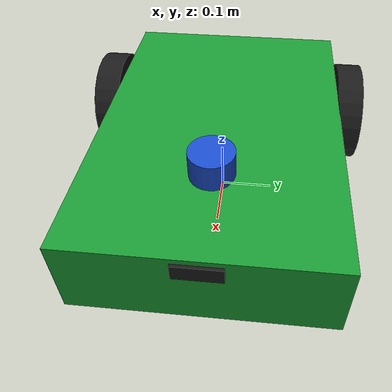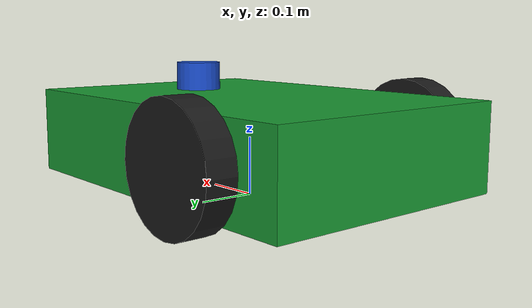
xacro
<?xml version="1.0"?>
<robot xmlns:xacro="http://www.ros.org/wiki/xacro" name="autonomous_lawnmower">

  <!-- ==================== MATERIALS ==================== -->
  <material name="green"><color rgba="0.1 0.6 0.2 1.0"/></material>
  <material name="black"><color rgba="0.1 0.1 0.1 1.0"/></material>
  <material name="grey"><color rgba="0.5 0.5 0.5 1.0"/></material>
  <material name="blue"><color rgba="0.1 0.3 0.8 1.0"/></material>

  <!-- ==================== BASE FOOTPRINT & CHASSIS ==================== -->
  <link name="base_footprint"/>

  <joint name="base_joint" type="fixed">
    <parent link="base_footprint"/>
    <child link="base_link"/>
    <origin xyz="0 0 0.10" rpy="0 0 0"/>
  </joint>

  <link name="base_link">
    <visual>
      <geometry><box size="0.65 0.45 0.15"/></geometry>
      <material name="green"/>
    </visual>
    <collision>
      <geometry><box size="0.65 0.45 0.15"/></geometry>
    </collision>
    <inertial>
      <mass value="12.0"/>
      <inertia ixx="0.225" ixy="0" ixz="0" iyy="0.445" iyz="0" izz="0.625"/>
    </inertial>
  </link>

  <!-- Cutting Deck (Visual Representation) -->
  <link name="cutting_deck_link">
    <visual>
      <geometry><cylinder radius="0.14" length="0.02"/></geometry>
      <material name="grey"/>
    </visual>
  </link>
  <joint name="cutting_deck_joint" type="fixed">
    <parent link="base_link"/>
    <child link="cutting_deck_link"/>
    <origin xyz="0.0 0.0 -0.08" rpy="0 0 0"/>
  </joint>

  <!-- ==================== DRIVE WHEELS ==================== -->
  <xacro:macro name="drive_wheel" params="prefix y_reflect">
    <link name="${prefix}_wheel">
      <visual>
        <geometry><cylinder radius="0.10" length="0.05"/></geometry>
        <material name="black"/>
      </visual>
      <collision>
        <geometry><cylinder radius="0.10" length="0.05"/></geometry>
      </collision>
      <inertial>
        <mass value="1.5"/>
        <inertia ixx="0.004" ixy="0" ixz="0" iyy="0.004" iyz="0" izz="0.0075"/>
      </inertial>
    </link>

    <joint name="${prefix}_wheel_joint" type="continuous">
      <parent link="base_link"/>
      <child link="${prefix}_wheel"/>
      <origin xyz="-0.15 ${y_reflect * 0.25} 0.0" rpy="-1.5708 0 0"/>
      <axis xyz="0 0 1"/>
    </joint>
  </xacro:macro>

  <xacro:drive_wheel prefix="left" y_reflect="1"/>
  <xacro:drive_wheel prefix="right" y_reflect="-1"/>

  <!-- ==================== FRONT CASTER WHEEL ==================== -->
  <link name="front_caster">
    <visual>
      <geometry><sphere radius="0.05"/></geometry>
      <material name="grey"/>
    </visual>
    <collision>
      <geometry><sphere radius="0.05"/></geometry>
    </collision>
    <inertial>
      <mass value="0.5"/>
      <inertia ixx="0.0005" ixy="0" ixz="0" iyy="0.0005" iyz="0" izz="0.0005"/>
    </inertial>
  </link>

  <joint name="caster_joint" type="fixed">
    <parent link="base_link"/>
    <child link="front_caster"/>
    <origin xyz="0.22 0.0 -0.05" rpy="0 0 0"/>
  </joint>

  <!-- ==================== SENSORS ==================== -->
  <!-- 1. LiDAR -->
  <link name="laser_frame">
    <visual>
      <geometry><cylinder radius="0.04" length="0.05"/></geometry>
      <material name="blue"/>
    </visual>
  </link>
  <joint name="laser_joint" type="fixed">
    <parent link="base_link"/>
    <child link="laser_frame"/>
    <origin xyz="0.15 0 0.10" rpy="0 0 0"/>
  </joint>

  <!-- 2. IMU -->
  <link name="imu_link"/>
  <joint name="imu_joint" type="fixed">
    <parent link="base_link"/>
    <child link="imu_link"/>
    <origin xyz="0 0 0" rpy="0 0 0"/>
  </joint>

  <!-- 3. GNSS / GPS -->
  <link name="gps_link"/>
  <joint name="gps_joint" type="fixed">
    <parent link="base_link"/>
    <child link="gps_link"/>
    <origin xyz="-0.15 0 0.10" rpy="0 0 0"/>
  </joint>

  <!-- 4. RGB Camera -->
  <link name="camera_link">
    <visual>
      <geometry><box size="0.02 0.08 0.03"/></geometry>
      <material name="black"/>
    </visual>
  </link>
  <joint name="camera_joint" type="fixed">
    <parent link="base_link"/>
    <child link="camera_link"/>
    <origin xyz="0.32 0 0.05" rpy="0 0 0"/>
  </joint>

  <!-- ==================== GAZEBO PLUGINS & COLORS ==================== -->
  <gazebo reference="base_link"><material>Gazebo/Green</material></gazebo>
  <gazebo reference="left_wheel"><material>Gazebo/FlatBlack</material></gazebo>
  <gazebo reference="right_wheel"><material>Gazebo/FlatBlack</material></gazebo>
  <gazebo reference="front_caster">
    <material>Gazebo/Grey</material>
    <mu1 value="0.001"/>
    <mu2 value="0.001"/>
  </gazebo>

  <!-- Differential Drive Controller Plugin -->
  <gazebo>
    <plugin name="diff_drive" filename="libgazebo_ros_diff_drive.so">
      <ros><namespace>/</namespace></ros>
      <left_joint>left_wheel_joint</left_joint>
      <right_joint>right_wheel_joint</right_joint>
      <wheel_separation>0.50</wheel_separation>
      <wheel_diameter>0.20</wheel_diameter>
      <max_wheel_torque>20</max_wheel_torque>
      <max_wheel_acceleration>1.0</max_wheel_acceleration>
      <publish_odom>true</publish_odom>
      <publish_odom_tf>true</publish_odom_tf>
      <publish_wheel_tf>true</publish_wheel_tf>
      <odometry_frame>odom</odometry_frame>
      <robot_base_frame>base_footprint</robot_base_frame>
    </plugin>
  </gazebo>

  <!-- LiDAR Sensor Plugin -->
  <gazebo reference="laser_frame">
    <sensor name="lidar" type="ray">
      <pose>0 0 0 0 0 0</pose>
      <visualize>true</visualize>
      <update_rate>10</update_rate>
      <ray>
        <scan>
          <horizontal>
            <samples>360</samples>
            <min_angle>-3.14159</min_angle>
            <max_angle>3.14159</max_angle>
          </horizontal>
        </scan>
        <range>
          <min>0.30</min>
          <max>15.0</max>
        </range>
        <noise>
          <type>gaussian</type>
          <mean>0.0</mean>
          <stddev>0.01</stddev>
        </noise>
      </ray>
      <plugin name="scan" filename="libgazebo_ros_ray_sensor.so">
        <ros><remapping>~/out:=scan</remapping></ros>
        <output_type>sensor_msgs/LaserScan</output_type>
        <frame_name>laser_frame</frame_name>
      </plugin>
    </sensor>
  </gazebo>

  <!-- IMU Sensor Plugin -->
  <gazebo reference="imu_link">
    <sensor name="imu_sensor" type="imu">
      <always_on>true</always_on>
      <update_rate>100</update_rate>
      <plugin name="imu_plugin" filename="libgazebo_ros_imu_sensor.so">
        <ros><remapping>~/out:=imu/data</remapping></ros>
        <initial_orientation_as_reference>false</initial_orientation_as_reference>
      </plugin>
    </sensor>
  </gazebo>

  <!-- GPS Sensor Plugin -->
  <gazebo reference="gps_link">
    <sensor name="gps_sensor" type="gps">
      <always_on>true</always_on>
      <update_rate>5.0</update_rate>
      <gps>
        <position_sensing>
          <horizontal><noise type="gaussian"><mean>0.0</mean><stddev>0.05</stddev></noise></horizontal>
          <vertical><noise type="gaussian"><mean>0.0</mean><stddev>0.10</stddev></noise></vertical>
        </position_sensing>
      </gps>
      <plugin name="gps_plugin" filename="libgazebo_ros_gps_sensor.so">
        <ros><remapping>~/out:=gps/fix</remapping></ros>
      </plugin>
    </sensor>
  </gazebo>

  <!-- RGB Camera Plugin -->
  <gazebo reference="camera_link">
    <sensor name="camera" type="camera">
      <update_rate>30.0</update_rate>
      <camera name="front_camera">
        <horizontal_fov>1.3962634</horizontal_fov>
        <image><width>640</width><height>480</height><format>R8G8B8</format></image>
        <clip><near>0.05</near><far>20.0</far></clip>
      </camera>
      <plugin name="camera_controller" filename="libgazebo_ros_camera.so">
        <frame_name>camera_link</frame_name>
      </plugin>
    </sensor>
  </gazebo>

</robot>
